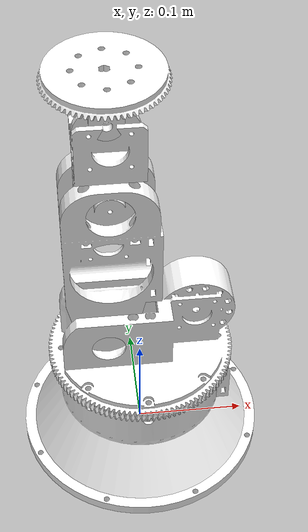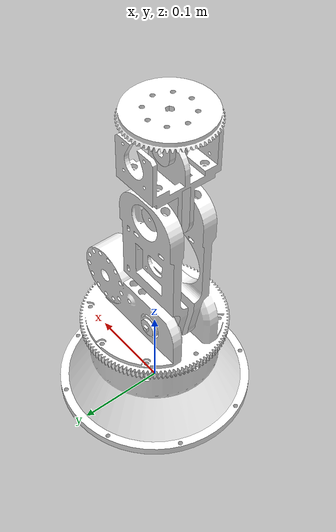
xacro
<?xml version="1.0"?>
<robot xmlns:xacro="http://www.ros.org/wiki/xacro" name="yara">
    <xacro:arg name="initial_positions_file" default="initial_positions.yaml" />

    <!-- Import yara urdf file -->
    <xacro:include filename="$(find yara_description)/urdf/yara.urdf" />

    <!-- Import control_xacro -->
    <xacro:include filename="yara.ros2_control.xacro" />

    <xacro:yara_ros2_control name="FakeSystem" initial_positions_file="$(arg initial_positions_file)"/>

</robot>

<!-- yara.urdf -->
<robot name="yara">

  <link name="base_link"/>

  <joint name="yara_base" type="fixed">
    <parent link="base_link"/>
    <child link="yara_link_0"/>
    <origin rpy="0 0 0" xyz="0 0 0"/>
  </joint>

  <link name="yara_link_0">
    <visual>
    <origin rpy="0 0 0" xyz="0.0302686 0.015353 0.06"/>
      <geometry>
        <mesh filename="file:///home/srki/yara_ws/src/yara_description/meshes/Link0.stl"/>
      </geometry>
      <material name="yara_white">
        <color rgba="1 1 1 1"/>
      </material>
    </visual>

    <collision>
    <origin rpy="0 0 0" xyz="0.0302686 0.015353 0.06"/>
      <geometry>
        <mesh filename="file:///home/srki/yara_ws/src/yara_description/meshes/Link0.stl"/>
      </geometry>
      <material name="yara_white">
        <color rgba="1 1 1 1"/>
      </material>
    </collision>
  </link>

  <joint name="yara_joint_1" type="revolute">
    <origin rpy="0 0 0" xyz="0 0 0.06"/>
    <parent link="yara_link_0"/>
    <child link="yara_link_1"/>
    <axis xyz="0 0 1"/>
    <limit effort="5" lower="-6.28" upper="6.28" velocity="0.5"/>
  </joint>

  <link name="yara_link_1">
    <visual>
      <origin rpy="0 0 0" xyz="0.0302686 0.015353 0"/>
      <geometry>
        <mesh filename="file:///home/srki/yara_ws/src/yara_description/meshes/Link1.stl"/>
      </geometry>
      <material name="yara_white">
        <color rgba="1 1 1 1"/>
      </material>
    </visual>

    <collision>
      <origin rpy="0 0 0" xyz="0.0302686 0.015353 0"/>
      <geometry>
        <mesh filename="file:///home/srki/yara_ws/src/yara_description/meshes/Link1.stl"/>
      </geometry>
      <material name="yara_white">
        <color rgba="1 1 1 1"/>
      </material>
    </collision>
  </link>

  <joint name="yara_joint_2" type="revolute">
    <origin rpy="0 0 0" xyz="-0.030585 0 0.08"/>
    <parent link="yara_link_1"/>
    <child link="yara_link_2"/>
    <axis xyz="0 1 0"/>
    <limit effort="5" lower="-1.3" upper="0.17" velocity="0.5"/>
  </joint>

  <link name="yara_link_2">
    <visual>
      <origin rpy="0 0 0" xyz="-0.07 0 0"/>
      <geometry>
        <mesh filename="file:///home/srki/yara_ws/src/yara_description/meshes/Link2.stl"/>
      </geometry>
      <material name="yara_white">
        <color rgba="1 1 1 1"/>
      </material>
    </visual>

    <collision>
      <origin rpy="0 0 0" xyz="-0.07 0 0"/>
      <geometry>
        <mesh filename="file:///home/srki/yara_ws/src/yara_description/meshes/Link2.stl"/>
      </geometry>
      <material name="yara_white">
        <color rgba="1 1 1 1"/>
      </material>
    </collision>
  </link>

  <joint name="yara_joint_3" type="revolute">
    <origin rpy="0 0 0" xyz="0.005 0 0.151049"/>
    <parent link="yara_link_2"/>
    <child link="yara_link_3"/>
    <axis xyz="0 1 0"/>
    <limit effort="5" lower="-1.6" upper="1.6" velocity="0.5"/>
  </joint>

  <link name="yara_link_3">
    <visual>
      <origin rpy="0 0 0" xyz="0.0558536 0.0195 -0.231049"/>
      <geometry>
        <mesh filename="file:///home/srki/yara_ws/src/yara_description/meshes/Link3.stl"/>
      </geometry>
      <material name="yara_white">
        <color rgba="1 1 1 1"/>
      </material>
    </visual>

    <collision>
      <origin rpy="0 0 0" xyz="0.0558536 0.0195 -0.231049"/>
      <geometry>
        <mesh filename="file:///home/srki/yara_ws/src/yara_description/meshes/Link3.stl"/>
      </geometry>
      <material name="yara_white">
        <color rgba="1 1 1 1"/>
      </material>
    </collision>
  </link>

  <joint name="yara_joint_4" type="revolute">
    <origin rpy="0 0 0" xyz="0 0 0.076893"/>
    <parent link="yara_link_3"/>
    <child link="yara_link_4"/>
    <axis xyz="0 1 0"/>
    <limit effort="5" lower="-1.5" upper="0.7" velocity="0.5"/>
  </joint>

  <link name="yara_link_4">
    <visual>
      <origin rpy="0 0 1.5707963" xyz="0 0.003 -0.031"/>
      <geometry>
        <mesh filename="file:///home/srki/yara_ws/src/yara_description/meshes/Link4.stl"/>
      </geometry>
      <material name="yara_white">
        <color rgba="1 1 1 1"/>
      </material>
    </visual>

    <collision>
      <origin rpy="0 0 1.5707963" xyz="0 0.003 -0.031"/>
      <geometry>
        <mesh filename="file:///home/srki/yara_ws/src/yara_description/meshes/Link4.stl"/>
      </geometry>
      <material name="yara_white">
        <color rgba="1 1 1 1"/>
      </material>
    </collision>
  </link>

  <joint name="yara_joint_5" type="revolute">
    <origin rpy="0 0 0" xyz="0 0.003 0"/>
    <parent link="yara_link_4"/>
    <child link="yara_link_5"/>
    <axis xyz="0 0 1"/>
    <limit effort="5" lower="-6.28" upper="6.28" velocity="0.5"/>
  </joint>

  <link name="yara_link_5">
    <visual>
      <origin rpy="0 0 1.5707963" xyz="0 0 -0.03"/>
      <geometry>
        <mesh filename="file:///home/srki/yara_ws/src/yara_description/meshes/Link5.stl"/>
      </geometry>
      <material name="yara_white">
        <color rgba="1 1 1 1"/>
      </material>
    </visual>

    <collision>
      <origin rpy="0 0 1.5707963" xyz="0 0 -0.03"/>
      <geometry>
        <mesh filename="file:///home/srki/yara_ws/src/yara_description/meshes/Link5.stl"/>
      </geometry>
      <material name="yara_white">
        <color rgba="1 1 1 1"/>
      </material>
    </collision>
  </link>

  <joint name="yara_joint_5_tool0" type="fixed">
    <parent link="yara_link_5"/>
    <child link="yara_tool0"/>
    <origin rpy="0 0 0" xyz="0 0 0.047"/>
  </joint>

  <link name="yara_tool0"/>

</robot>
